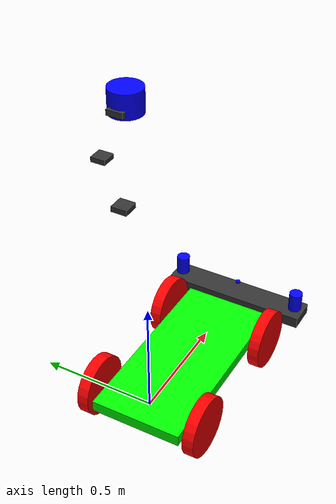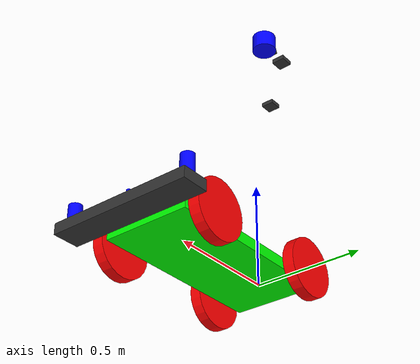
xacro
<?xml version="1.0"?>
<robot xmlns:xacro="http://www.ros.org/wiki/xacro" name="whill_modelc">

  <material name="gray">
    <color rgba="0.5 0.5 0.5 1.0" />
  </material>
  <material name="red">
    <color rgba="1.0 0.0 0.0 1.0" />
  </material>
  <material name="green">
    <color rgba="0.0 1.0 0.0 1.0" />
  </material>
  <material name="blue">
    <color rgba="0.0 0.0 1.0 1.0" />
  </material>
  <material name="black">
    <color rgba="0.2 0.2 0.2 1.0" />
  </material>

  <link name="base_link" />
  <joint name="base_body_joint" type="fixed">
    <parent link="base_link" />
    <child link="base_floor" />
    <origin xyz="0.3 0 0.0" rpy="0 0 0" />
  </joint>

  <link name="base_floor">
    <inertial>
      <origin xyz="0 0 0" rpy="0 0 0" />
      <mass value="1.0" />
      <inertia ixx="0.001" ixy="0.0" ixz="0.0" iyy="0.001" iyz="0.0" izz="0.001" />
    </inertial>
    <visual>
      <origin xyz="0 0 0" rpy="0 0 0" />
      <geometry>
        <box size="0.85 0.4 0.050" />
      </geometry>
      <material name="green" />
    </visual>
    <collision>
      <origin xyz="0 0 0" rpy="0 0 0" />
      <geometry>
        <box size="0.85 0.4 0.050" />
      </geometry>
    </collision>
  </link>

  <link name="left_wheel_link">
    <visual>
      <geometry>
        <cylinder length="0.05" radius="0.1325" />
      </geometry>
      <origin xyz="0 0 0" rpy="0 0 0" />
      <material name="red" />
    </visual>

    <collision>
      <geometry>
        <cylinder length="0.05" radius="0.1325" />
      </geometry>
    </collision>

    <inertial>
      <origin xyz="0 0 0" />
      <mass value="0.500" />
      <inertia ixx="0.0013541667" ixy="0" ixz="0" iyy="0.0013541667" iyz="0" izz="0.0025" />
    </inertial>
  </link>

  <joint name="leftWheel" type="continuous">
    <parent link="base_floor" />
    <child link="left_wheel_link" />
    <origin xyz="-0.3 0.245 0" rpy="-1.57 0 0" />
    <axis xyz="0 0 1" />
  </joint>

  <link name="right_wheel_link">
    <collision>
      <origin xyz="0 0 0" rpy="0 0 0" />
      <geometry>
        <cylinder length="0.05" radius="0.1325" />
      </geometry>
    </collision>
    <visual>
      <origin xyz="0 0 0" rpy="0 0 0" />
      <geometry>
        <cylinder length="0.05" radius="0.1325" />
      </geometry>
      <material name="red" />
    </visual>
    <inertial>
      <origin xyz="0 0 0" />
      <mass value="0.500" />
      <inertia ixx="0.0013541667" ixy="0" ixz="0" iyy="0.0013541667" iyz="0" izz="0.0025" />
    </inertial>
  </link>

  <joint name="rightWheel" type="continuous">
    <parent link="base_floor" />
    <child link="right_wheel_link" />
    <origin xyz="-0.3 -0.245 0" rpy="1.57 0 0" />
    <axis xyz="0 0 1" />
  </joint>

  <link name="frontwheel_left">
    <collision>
      <geometry>
        <cylinder length="0.05" radius="0.1325" />
      </geometry>
    </collision>

    <visual>
      <geometry>
        <cylinder length="0.05" radius="0.1325" />
      </geometry>
      <material name="red" />
    </visual>

    <inertial>
      <origin xyz="0 0 0" rpy="0 0 0" />
      <mass value="1.0" />
      <inertia ixx="1.0" ixy="0.0" ixz="0.0"
        iyy="1.0" iyz="0.0"
        izz="1.0" />
    </inertial>
  </link>

  <joint name="frontwheel_left_joint" type="fixed">
    <parent link="base_floor" />
    <child link="frontwheel_left" />
    <origin xyz="0.3 -0.245 0" rpy="1.57 0 0" />
    <axis xyz="0 0 1" />
  </joint>
  <link name="frontwheel_right">
    <collision>
      <geometry>
        <cylinder length="0.05" radius="0.1325" />
      </geometry>
    </collision>

    <visual>
      <geometry>
        <cylinder length="0.05" radius="0.1325" />
      </geometry>
      <material name="red" />
    </visual>

    <inertial>
      <origin xyz="0 0 0" rpy="0 0 0" />
      <mass value="1.0" />
      <inertia ixx="1.0" ixy="0.0" ixz="0.0"
        iyy="1.0" iyz="0.0"
        izz="1.0" />
    </inertial>
  </link>

  <joint name="frontwheel_right_joint" type="fixed">
    <parent link="base_floor" />
    <child link="frontwheel_right" />
    <origin xyz="0.3 0.245 0" rpy="1.57 0 0" />
    <axis xyz="0 0 -1" />
  </joint>

  <!-- tim_frame-->
  <joint name="tim_frame_joint" type="fixed">
    <parent link="base_link" />
    <child link="tim_frame" />
    <origin xyz="0.82 0 0.0" rpy="0 0 0" />
  </joint>
  <link name="tim_frame">
    <inertial>
      <origin xyz="0 0 0" rpy="0 0 0" />
      <mass value="1.0" />
      <inertia ixx="0.001" ixy="0.0" ixz="0.0" iyy="0.001" iyz="0.0" izz="0.001" />
    </inertial>
    <visual>
      <origin xyz="0 0 0" rpy="0 0 0" />
      <geometry>
        <box size="0.125 0.66 0.050" />
      </geometry>
      <material name="black" />
    </visual>
    <collision>
      <origin xyz="0 0 0" rpy="0 0 0" />
      <geometry>
        <box size="0.10 0.66 0.050" />
      </geometry>
    </collision>
  </link>
  <!-- Tim_R %%%%%%%%%%%%%%%%%%%%%%%%%%%%%%%%%%%%%%%%%%-->
  <joint name="tim_joint_R" type="fixed">
    <parent link="base_link" />
    <child link="tim_link_R" />
    <origin xyz="0.82 -0.29 0.075" rpy="0 0 -0.84806208" />
  </joint>
  <link name="tim_link_R">
    <visual>
      <geometry>
        <cylinder radius="0.030" length="0.086" />
      </geometry>
      <origin xyz="0 0 0" rpy="0 0 0" />
      <material name="blue" />
    </visual>
    <collision>
      <geometry>
        <cylinder radius="0.030" length="0.086" />
      </geometry>
      <origin xyz="0 0 0" rpy="0 0 0" />
    </collision>
    <inertial>
      <origin xyz="0 0 0" rpy="0 0 0" />
      <mass value="0.25" />
      <inertia ixx="0.00021033333"
        ixy="0" ixz="0"
        iyx="0" iyy="0.00021033333"
        iyz="0"
        izx="0" izy="0" izz="0.0001125" />
    </inertial>
  </link>

  <!-- Tim_L %%%%%%%%%%%%%%%%%%%%%%%%%%%%%%%%%%%%%%%%%%-->
  <joint name="tim_joint_L" type="fixed">
    <parent link="base_link" />
    <child link="tim_link_L" />
    <origin xyz="0.82 0.29 0.075" rpy="0 0 0.84806208" /> <!--ベースリンクからの距離 -->
  </joint>
  <link name="tim_link_L">
    <visual>
      <geometry>
        <cylinder radius="0.030" length="0.086" />
      </geometry>
      <origin xyz="0 0 0" rpy="0 0 0" />
      <material name="blue" />
    </visual>
    <collision>
      <geometry>
        <cylinder radius="0.030" length="0.086" />
      </geometry>
      <origin xyz="0 0 0" rpy="0 0 0" />
    </collision>
    <inertial>
      <origin xyz="0 0 0" rpy="0 0 0" />
      <mass value="0.25" />
      <inertia ixx="0.00021033333"
        ixy="0" ixz="0"
        iyx="0" iyy="0.00021033333"
        iyz="0"
        izx="0" izy="0" izz="0.0001125" />
    </inertial>
  </link>

  <!-- laser %%%%%%%%%%%%%%%%%%%%%%%%%%%%%%%%%%%%%%%%%%-->
  <joint name="laser_joint" type="fixed">
    <parent link="base_link" />
    <child link="laser_link" />
    <origin xyz="0.82 0 0.075" rpy="0 0 0" /> <!--ベースリンクからの距離 -->
  </joint>
  <link name="laser_link">
    <visual>
      <geometry>
        <cylinder radius="0.01" length="0.01" />
      </geometry>
      <origin xyz="0 0 0" rpy="0 0 0" />
      <material name="blue" />
    </visual>
    <collision>
      <geometry>
        <cylinder radius="0.01" length="0.01" />
      </geometry>
      <origin xyz="0 0 0" rpy="0 0 0" />
    </collision>
    <inertial>
      <origin xyz="0 0 0" rpy="0 0 0" />
      <mass value="0.25" />
      <inertia ixx="0.00021033333"
        ixy="0" ixz="0"
        iyx="0" iyy="0.00021033333"
        iyz="0"
        izx="0" izy="0" izz="0.0001125" />
    </inertial>
  </link>

  <!-- multiscan %%%%%%%%%%%%%%%%%%%%%%%%%%%%%%%%%%%%%%%%%%-->
  <joint name="multiscan_joint" type="fixed">
    <parent link="base_link" />
    <child link="multiscan_link" />
    <origin xyz="-0.10 0 1.42" rpy="0 0 0" />
    <!-- 上下反転する場合 -->
  </joint>
  <link name="multiscan_link">
    <visual>
      <geometry>
        <cylinder radius="0.060" length="0.086" />
      </geometry>
      <origin xyz="0 0 0" rpy="0 0 0" />
      <material name="blue" />
    </visual>
    <collision>
      <geometry>
        <cylinder radius="0.060" length="0.086" />
      </geometry>
      <origin xyz="0 0 0" rpy="0 0 0" />
    </collision>
    <inertial>
      <origin xyz="0 0 0" rpy="0 0 0" />
      <mass value="0.25" />
      <inertia ixx="0.00021033333"
        ixy="0" ixz="0"
        iyx="0" iyy="0.00021033333"
        iyz="0"
        izx="0" izy="0" izz="0.0001125" />
    </inertial>
  </link>

  <!-- imu %%%%%%%%%%%%%%%%%%%%%%%%%%%%%%%%%%%%%%%%%%-->
  <joint name="imu_joint" type="fixed">
    <parent link="base_link" />
    <child link="imu_link" />
    <origin xyz="-0.14 0 1.05" rpy="0 0 0" />
  </joint>
  <link name="imu_link">
    <inertial>
      <origin xyz="0 0 0" rpy="0 0 0" />
      <mass value="1.0" />
      <inertia ixx="0.001" ixy="0.0" ixz="0.0" iyy="0.001" iyz="0.0" izz="0.001" />
    </inertial>
    <visual>
      <origin xyz="0 0 0" rpy="0 0 0" />
      <geometry>
        <box size="0.06 0.06 0.020" />
      </geometry>
      <material name="black" />
    </visual>
    <collision>
      <origin xyz="0 0 0" rpy="0 0 0" />
      <geometry>
        <box size="0.10 0.66 0.050" />
      </geometry>
    </collision>
  </link>

  <!-- web camear %%%%%%%%%%%%%%%%%%%%%%%%%%%%%%%%%%%%%%%%%%-->
  <joint name="camera_joint" type="fixed">
    <parent link="base_link" />
    <child link="camera_link" />
    <origin xyz="-0.14 0 1.40" rpy="0 0 0" />
  </joint>
  <link name="camera_link">
    <inertial>
      <origin xyz="0 0 0" rpy="0 0 0" />
      <mass value="1.0" />
      <inertia ixx="0.001" ixy="0.0" ixz="0.0" iyy="0.001" iyz="0.0" izz="0.001" />
    </inertial>
    <visual>
      <origin xyz="0 0 0" rpy="0 0 0" />
      <geometry>
        <box size="0.06 0.06 0.020" />
      </geometry>
      <material name="black" />
    </visual>
    <collision>
      <origin xyz="0 0 0" rpy="0 0 0" />
      <geometry>
        <box size="0.10 0.66 0.050" />
      </geometry>
    </collision>
  </link>

  <!-- gps %%%%%%%%%%%%%%%%%%%%%%%%%%%%%%%%%%%%%%%%%%-->
  <joint name="gps_joint" type="fixed">
    <parent link="base_link" />
    <child link="gps_link" />
    <origin xyz="0.12 0.25 1.03" rpy="0 0 0" />
  </joint>
  <link name="gps_link">
    <inertial>
      <origin xyz="0 0 0" rpy="0 0 0" />
      <mass value="1.0" />
      <inertia ixx="0.001" ixy="0.0" ixz="0.0" iyy="0.001" iyz="0.0" izz="0.001" />
    </inertial>
    <visual>
      <origin xyz="0 0 0" rpy="0 0 0" />
      <geometry>
        <box size="0.06 0.06 0.020" />
      </geometry>
      <material name="black" />
    </visual>
    <collision>
      <origin xyz="0 0 0" rpy="0 0 0" />
      <geometry>
        <box size="0.10 0.66 0.050" />
      </geometry>
    </collision>
  </link>
</robot>
